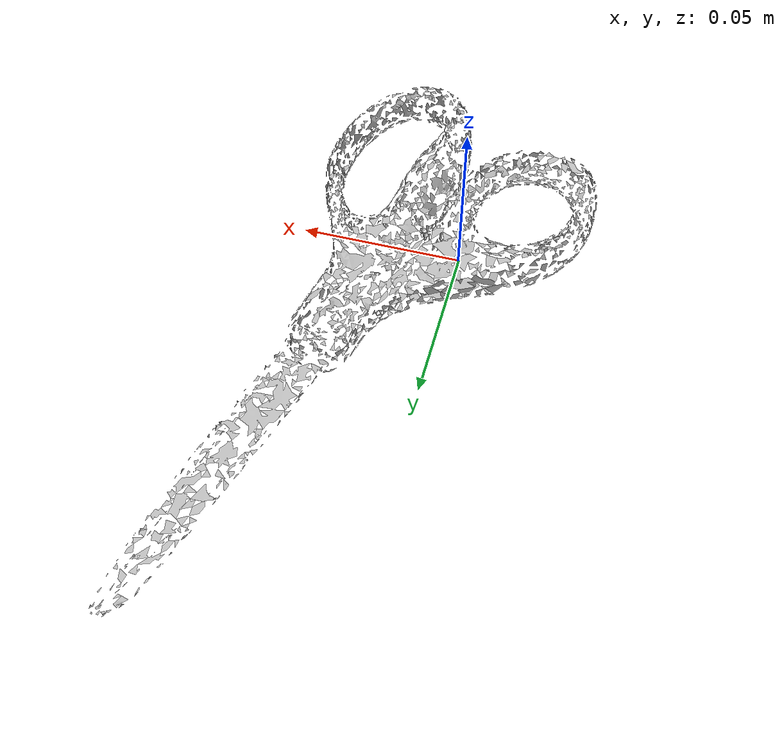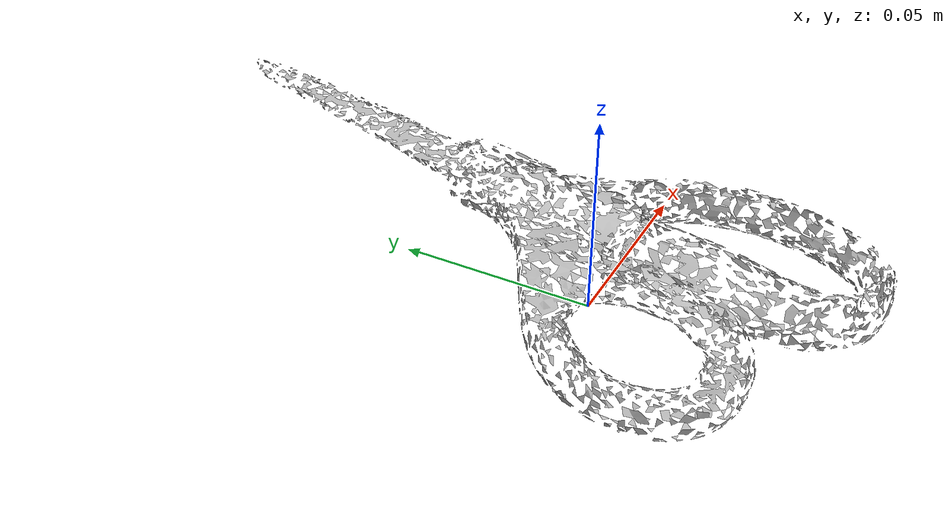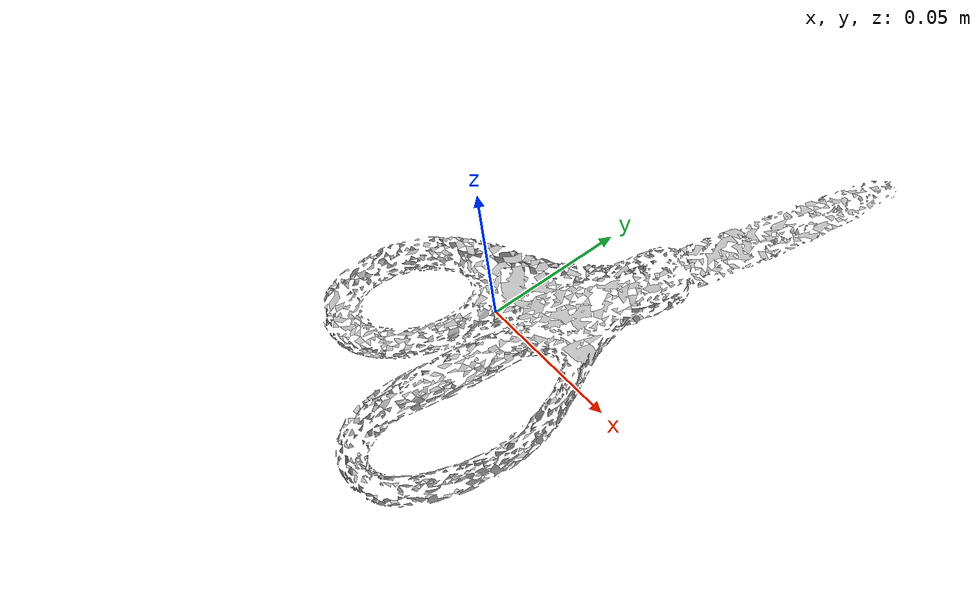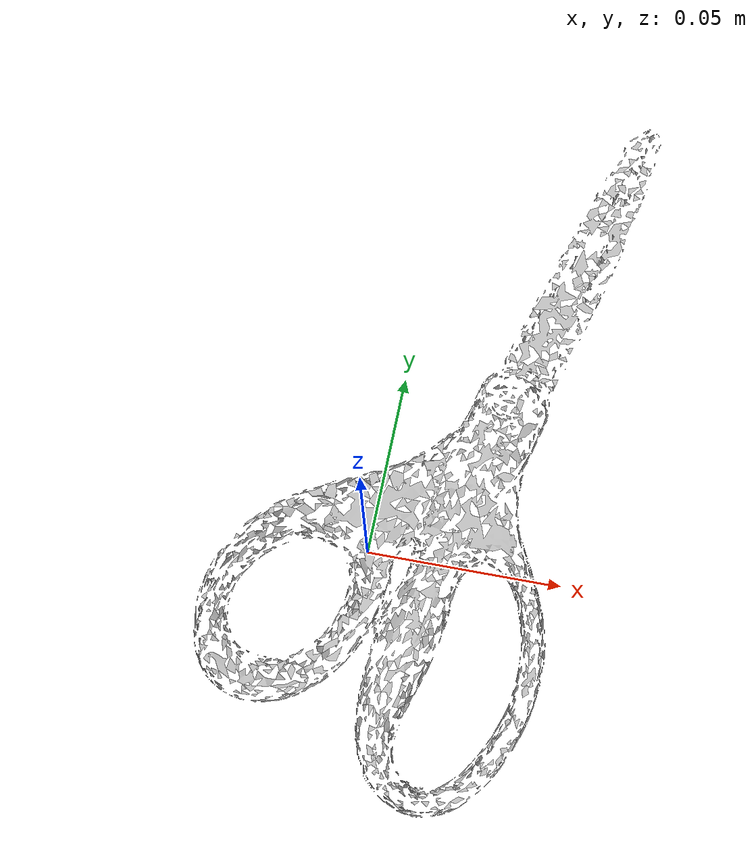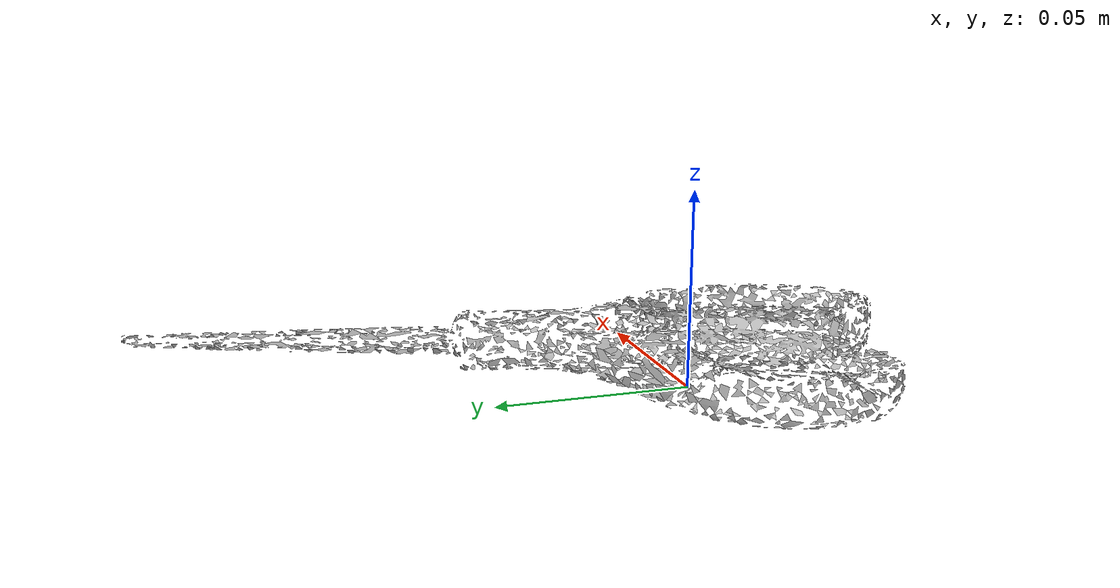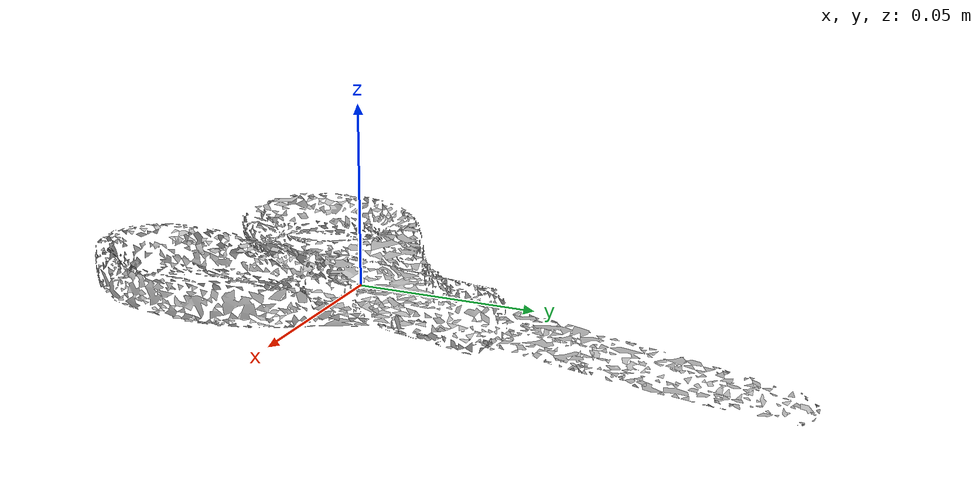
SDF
<?xml version='1.0'?>
<sdf version="1.4">
  <model name="scissors">
    <static>false</static>
    <link name="link">
      <inertial>
        <pose>0.01459152171807974 0.0031621364077388443 0.007400674371156582 1.1124705759061984 -1.559040239089719 -2.9935291444767844</pose>
        <mass>4.680136717925133e-05</mass>
        <inertia>
          <ixx>8.694331860937045e-08</ixx>
          <ixy>1.2611942211801648e-24</ixy>
          <ixz>-6.7951641153485285e-25</ixz>
          <iyy>7.10209625183146e-08</iyy>
          <iyz>-8.335582100601413e-24</iyz>
          <izz>1.6932566251308006e-08</izz>
        </inertia>
      </inertial>
      <collision name="collision">
        <geometry>
          <mesh>
            <!-- Use a downsampled mesh for collisions -->
            <uri>model://037_scissors/downsampled.obj</uri>
	        </mesh>
        </geometry>
        <surface>
      </surface>
      </collision>
      <visual name="visual">
        <geometry>
          <mesh>
            <uri>model://037_scissors/google_16k/textured.obj</uri>
	        </mesh>
        </geometry>
        <material>
          <script>
            <uri>model://037_scissors/scissors.material</uri>
            <name>scissors</name>
          </script>
        </material>
      </visual>
    </link>
  </model>
</sdf>
